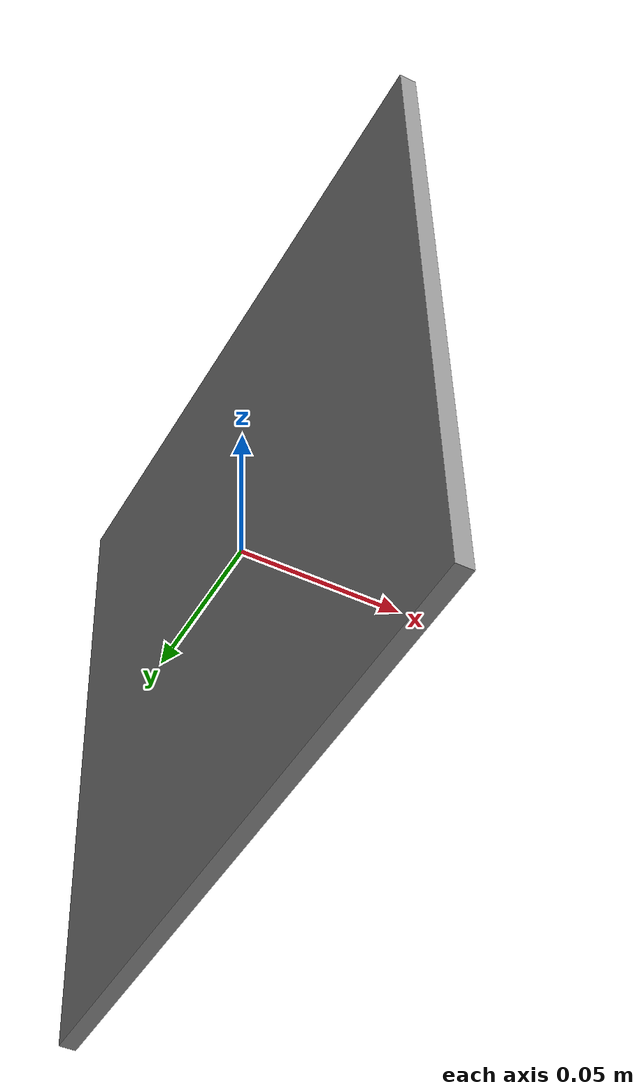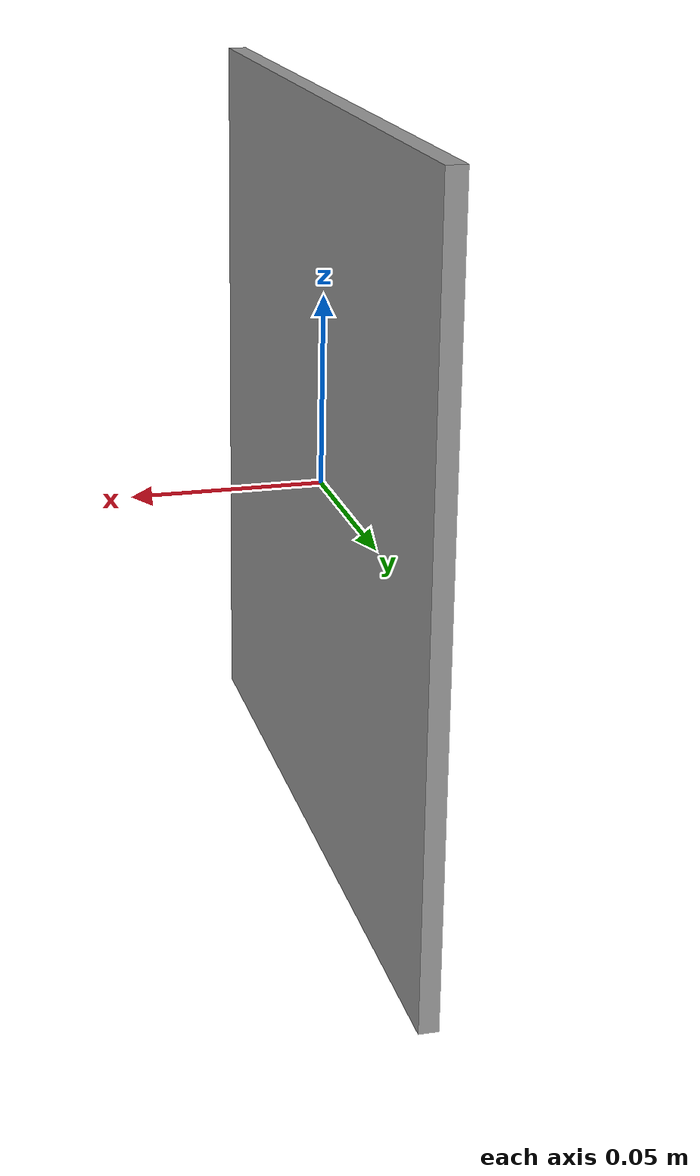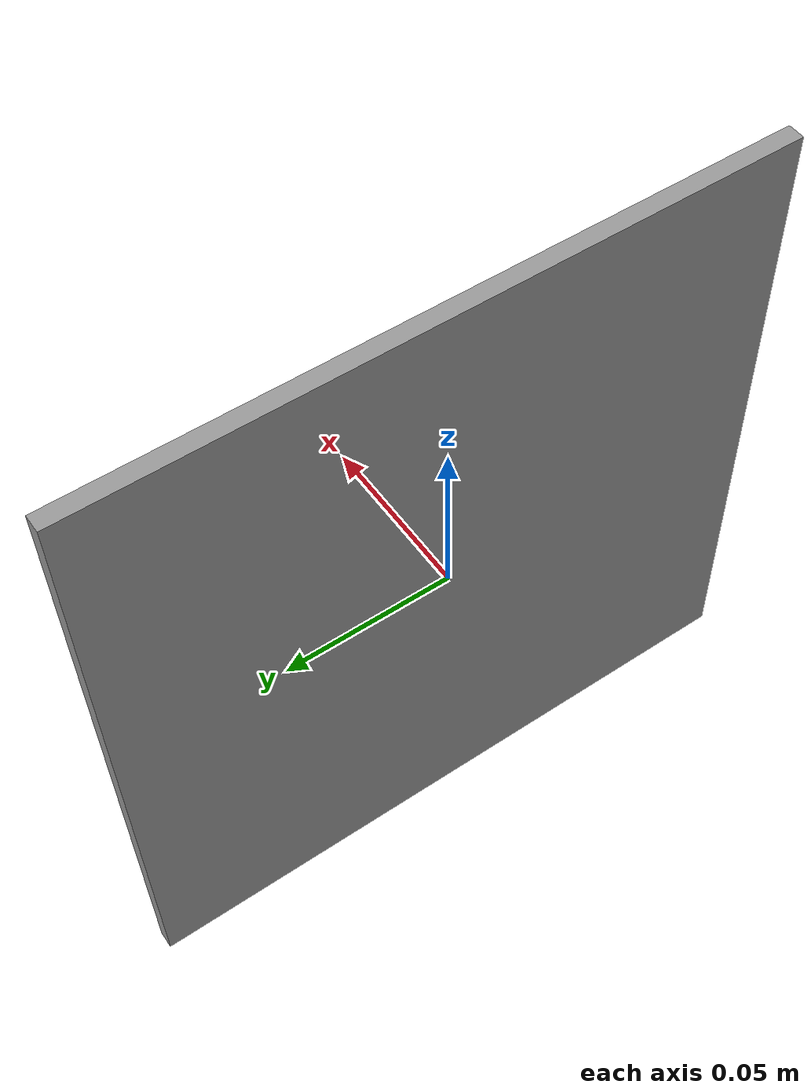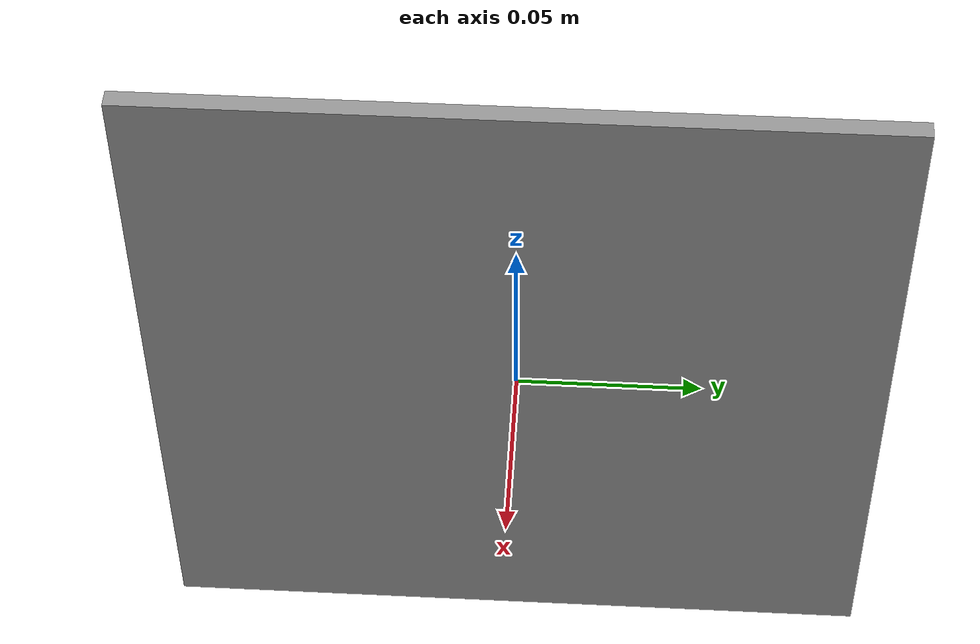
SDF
<?xml version="1.0" ?>
<sdf version="1.6">
  <model name="aruco_marker">
    <static>true</static>
    <link name="link">
      <collision name="collision">
        <geometry>
          <box>
            <size>0.005 0.2 0.2</size>
          </box>
        </geometry>
      </collision>
      <visual name="visual">
        <geometry>
          <box>
            <size>0.005 0.2 0.2</size>
          </box>
        </geometry>
        <material>
          <script>
            <uri>file://media/materials/scripts/gazebo.material</uri>
            <name>Gazebo/Grey</name>
          </script>
        </material>
      </visual>
    </link>
  </model>
</sdf>
